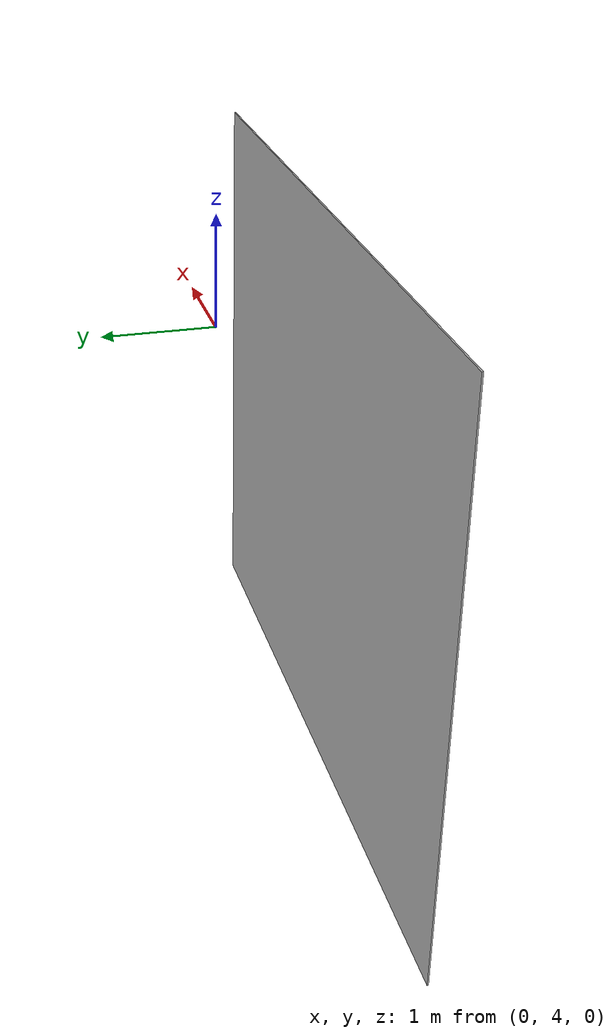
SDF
<?xml version ="1.0"?>
<sdf version="1.6">
  <model name="line_follow">
    <pose>-3.14159265359 4 0  1.57079632679 0 0</pose>
    <static>true</static>
    <link name="link">
      <collision name="collision">
        <geometry>
          <mesh>
            <uri>model://line_follow/meshes/tiny_line_follow.dae</uri>
          </mesh>
        </geometry>
      </collision>

      <visual name="visual">
        <cast_shadows>true</cast_shadows>
        <geometry>
          <mesh>
            <uri>model://line_follow/meshes/tiny_line_follow.dae</uri>
          </mesh>
        </geometry>
      </visual>

    </link>
  </model>
</sdf>
